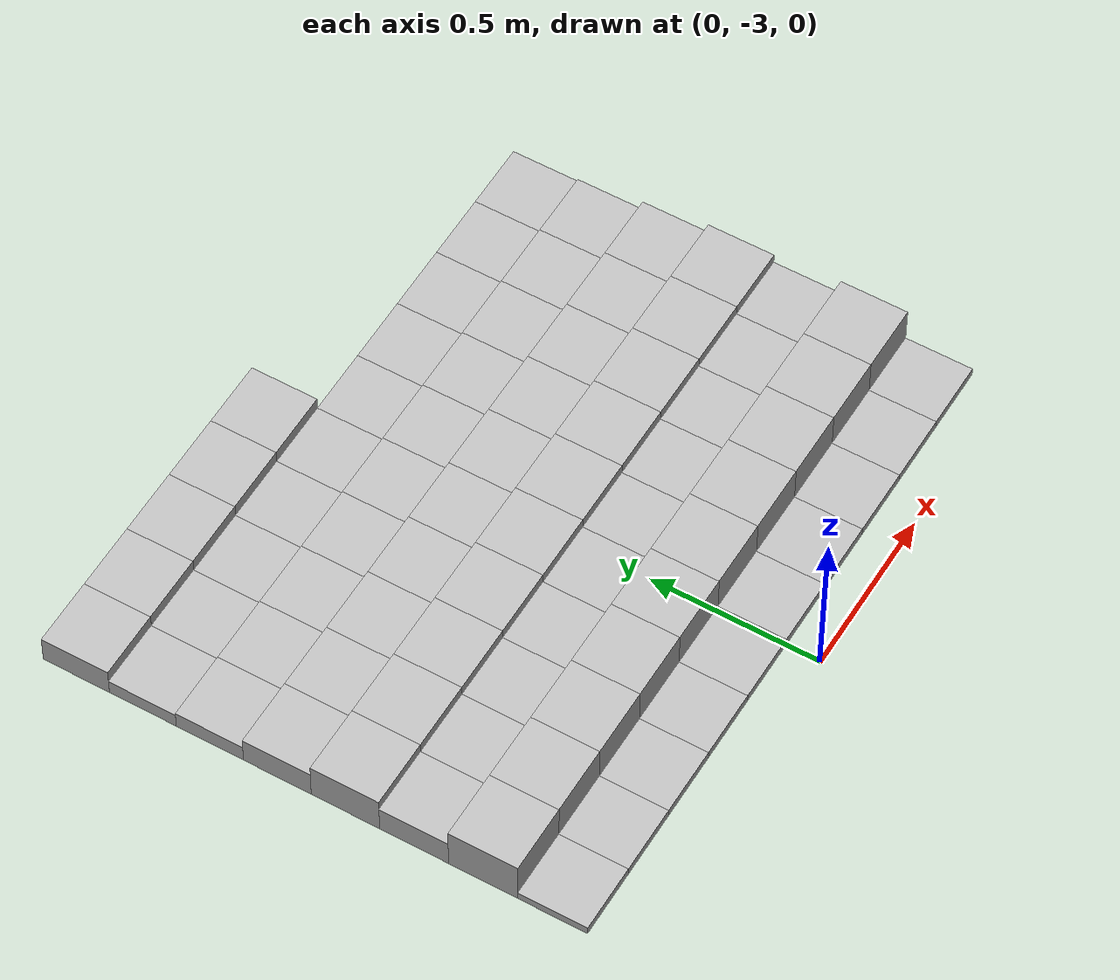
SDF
<sdf version="1.6">
 <model name="Terrain">
  <static>true</static>
  <link name="box_7_0">
   <pose>-0.9 -1.4 0.0438763169991 0 0 0</pose>
   <inertial>
    <mass>1.0</mass>
    <inertia><ixx>0.0</ixx><ixy>0.0</ixy><ixz>0.0</ixz><iyy>0.0</iyy><iyz>0.0</iyz><izz>0.0</izz></inertia>
   </inertial>
   <collision name="collision"><geometry><box><size>0.2 0.2 0.0877526339982</size></box></geometry></collision>
   <visual name="visual"><geometry><box><size>0.2 0.2 0.0877526339982</size></box></geometry></visual>
  </link>
  <link name="box_7_1">
   <pose>-0.7 -1.4 0.0438763169991 0 0 0</pose>
   <inertial>
    <mass>1.0</mass>
    <inertia><ixx>0.0</ixx><ixy>0.0</ixy><ixz>0.0</ixz><iyy>0.0</iyy><iyz>0.0</iyz><izz>0.0</izz></inertia>
   </inertial>
   <collision name="collision"><geometry><box><size>0.2 0.2 0.0877526339982</size></box></geometry></collision>
   <visual name="visual"><geometry><box><size>0.2 0.2 0.0877526339982</size></box></geometry></visual>
  </link>
  <link name="box_7_2">
   <pose>-0.5 -1.4 0.0438763169991 0 0 0</pose>
   <inertial>
    <mass>1.0</mass>
    <inertia><ixx>0.0</ixx><ixy>0.0</ixy><ixz>0.0</ixz><iyy>0.0</iyy><iyz>0.0</iyz><izz>0.0</izz></inertia>
   </inertial>
   <collision name="collision"><geometry><box><size>0.2 0.2 0.0877526339982</size></box></geometry></collision>
   <visual name="visual"><geometry><box><size>0.2 0.2 0.0877526339982</size></box></geometry></visual>
  </link>
  <link name="box_7_3">
   <pose>-0.3 -1.4 0.0438763169991 0 0 0</pose>
   <inertial>
    <mass>1.0</mass>
    <inertia><ixx>0.0</ixx><ixy>0.0</ixy><ixz>0.0</ixz><iyy>0.0</iyy><iyz>0.0</iyz><izz>0.0</izz></inertia>
   </inertial>
   <collision name="collision"><geometry><box><size>0.2 0.2 0.0877526339982</size></box></geometry></collision>
   <visual name="visual"><geometry><box><size>0.2 0.2 0.0877526339982</size></box></geometry></visual>
  </link>
  <link name="box_7_4">
   <pose>-0.1 -1.4 0.0438763169991 0 0 0</pose>
   <inertial>
    <mass>1.0</mass>
    <inertia><ixx>0.0</ixx><ixy>0.0</ixy><ixz>0.0</ixz><iyy>0.0</iyy><iyz>0.0</iyz><izz>0.0</izz></inertia>
   </inertial>
   <collision name="collision"><geometry><box><size>0.2 0.2 0.0877526339982</size></box></geometry></collision>
   <visual name="visual"><geometry><box><size>0.2 0.2 0.0877526339982</size></box></geometry></visual>
  </link>
  <link name="box_8_0">
   <pose>-0.9 -1.6 0.0244572499939 0 0 0</pose>
   <inertial>
    <mass>1.0</mass>
    <inertia><ixx>0.0</ixx><ixy>0.0</ixy><ixz>0.0</ixz><iyy>0.0</iyy><iyz>0.0</iyz><izz>0.0</izz></inertia>
   </inertial>
   <collision name="collision"><geometry><box><size>0.2 0.2 0.0489144999877</size></box></geometry></collision>
   <visual name="visual"><geometry><box><size>0.2 0.2 0.0489144999877</size></box></geometry></visual>
  </link>
  <link name="box_8_1">
   <pose>-0.7 -1.6 0.0244572499939 0 0 0</pose>
   <inertial>
    <mass>1.0</mass>
    <inertia><ixx>0.0</ixx><ixy>0.0</ixy><ixz>0.0</ixz><iyy>0.0</iyy><iyz>0.0</iyz><izz>0.0</izz></inertia>
   </inertial>
   <collision name="collision"><geometry><box><size>0.2 0.2 0.0489144999877</size></box></geometry></collision>
   <visual name="visual"><geometry><box><size>0.2 0.2 0.0489144999877</size></box></geometry></visual>
  </link>
  <link name="box_8_2">
   <pose>-0.5 -1.6 0.0244572499939 0 0 0</pose>
   <inertial>
    <mass>1.0</mass>
    <inertia><ixx>0.0</ixx><ixy>0.0</ixy><ixz>0.0</ixz><iyy>0.0</iyy><iyz>0.0</iyz><izz>0.0</izz></inertia>
   </inertial>
   <collision name="collision"><geometry><box><size>0.2 0.2 0.0489144999877</size></box></geometry></collision>
   <visual name="visual"><geometry><box><size>0.2 0.2 0.0489144999877</size></box></geometry></visual>
  </link>
  <link name="box_8_3">
   <pose>-0.3 -1.6 0.0244572499939 0 0 0</pose>
   <inertial>
    <mass>1.0</mass>
    <inertia><ixx>0.0</ixx><ixy>0.0</ixy><ixz>0.0</ixz><iyy>0.0</iyy><iyz>0.0</iyz><izz>0.0</izz></inertia>
   </inertial>
   <collision name="collision"><geometry><box><size>0.2 0.2 0.0489144999877</size></box></geometry></collision>
   <visual name="visual"><geometry><box><size>0.2 0.2 0.0489144999877</size></box></geometry></visual>
  </link>
  <link name="box_8_4">
   <pose>-0.1 -1.6 0.0244572499939 0 0 0</pose>
   <inertial>
    <mass>1.0</mass>
    <inertia><ixx>0.0</ixx><ixy>0.0</ixy><ixz>0.0</ixz><iyy>0.0</iyy><iyz>0.0</iyz><izz>0.0</izz></inertia>
   </inertial>
   <collision name="collision"><geometry><box><size>0.2 0.2 0.0489144999877</size></box></geometry></collision>
   <visual name="visual"><geometry><box><size>0.2 0.2 0.0489144999877</size></box></geometry></visual>
  </link>
  <link name="box_8_5">
   <pose>0.1 -1.6 0.0244572499939 0 0 0</pose>
   <inertial>
    <mass>1.0</mass>
    <inertia><ixx>0.0</ixx><ixy>0.0</ixy><ixz>0.0</ixz><iyy>0.0</iyy><iyz>0.0</iyz><izz>0.0</izz></inertia>
   </inertial>
   <collision name="collision"><geometry><box><size>0.2 0.2 0.0489144999877</size></box></geometry></collision>
   <visual name="visual"><geometry><box><size>0.2 0.2 0.0489144999877</size></box></geometry></visual>
  </link>
  <link name="box_8_6">
   <pose>0.3 -1.6 0.0244572499939 0 0 0</pose>
   <inertial>
    <mass>1.0</mass>
    <inertia><ixx>0.0</ixx><ixy>0.0</ixy><ixz>0.0</ixz><iyy>0.0</iyy><iyz>0.0</iyz><izz>0.0</izz></inertia>
   </inertial>
   <collision name="collision"><geometry><box><size>0.2 0.2 0.0489144999877</size></box></geometry></collision>
   <visual name="visual"><geometry><box><size>0.2 0.2 0.0489144999877</size></box></geometry></visual>
  </link>
  <link name="box_8_7">
   <pose>0.5 -1.6 0.0244572499939 0 0 0</pose>
   <inertial>
    <mass>1.0</mass>
    <inertia><ixx>0.0</ixx><ixy>0.0</ixy><ixz>0.0</ixz><iyy>0.0</iyy><iyz>0.0</iyz><izz>0.0</izz></inertia>
   </inertial>
   <collision name="collision"><geometry><box><size>0.2 0.2 0.0489144999877</size></box></geometry></collision>
   <visual name="visual"><geometry><box><size>0.2 0.2 0.0489144999877</size></box></geometry></visual>
  </link>
  <link name="box_8_8">
   <pose>0.7 -1.6 0.0244572499939 0 0 0</pose>
   <inertial>
    <mass>1.0</mass>
    <inertia><ixx>0.0</ixx><ixy>0.0</ixy><ixz>0.0</ixz><iyy>0.0</iyy><iyz>0.0</iyz><izz>0.0</izz></inertia>
   </inertial>
   <collision name="collision"><geometry><box><size>0.2 0.2 0.0489144999877</size></box></geometry></collision>
   <visual name="visual"><geometry><box><size>0.2 0.2 0.0489144999877</size></box></geometry></visual>
  </link>
  <link name="box_8_9">
   <pose>0.9 -1.6 0.0244572499939 0 0 0</pose>
   <inertial>
    <mass>1.0</mass>
    <inertia><ixx>0.0</ixx><ixy>0.0</ixy><ixz>0.0</ixz><iyy>0.0</iyy><iyz>0.0</iyz><izz>0.0</izz></inertia>
   </inertial>
   <collision name="collision"><geometry><box><size>0.2 0.2 0.0489144999877</size></box></geometry></collision>
   <visual name="visual"><geometry><box><size>0.2 0.2 0.0489144999877</size></box></geometry></visual>
  </link>
  <link name="box_9_0">
   <pose>-0.9 -1.8 0.0282694233115 0 0 0</pose>
   <inertial>
    <mass>1.0</mass>
    <inertia><ixx>0.0</ixx><ixy>0.0</ixy><ixz>0.0</ixz><iyy>0.0</iyy><iyz>0.0</iyz><izz>0.0</izz></inertia>
   </inertial>
   <collision name="collision"><geometry><box><size>0.2 0.2 0.056538846623</size></box></geometry></collision>
   <visual name="visual"><geometry><box><size>0.2 0.2 0.056538846623</size></box></geometry></visual>
  </link>
  <link name="box_9_1">
   <pose>-0.7 -1.8 0.0282694233115 0 0 0</pose>
   <inertial>
    <mass>1.0</mass>
    <inertia><ixx>0.0</ixx><ixy>0.0</ixy><ixz>0.0</ixz><iyy>0.0</iyy><iyz>0.0</iyz><izz>0.0</izz></inertia>
   </inertial>
   <collision name="collision"><geometry><box><size>0.2 0.2 0.056538846623</size></box></geometry></collision>
   <visual name="visual"><geometry><box><size>0.2 0.2 0.056538846623</size></box></geometry></visual>
  </link>
  <link name="box_9_2">
   <pose>-0.5 -1.8 0.0282694233115 0 0 0</pose>
   <inertial>
    <mass>1.0</mass>
    <inertia><ixx>0.0</ixx><ixy>0.0</ixy><ixz>0.0</ixz><iyy>0.0</iyy><iyz>0.0</iyz><izz>0.0</izz></inertia>
   </inertial>
   <collision name="collision"><geometry><box><size>0.2 0.2 0.056538846623</size></box></geometry></collision>
   <visual name="visual"><geometry><box><size>0.2 0.2 0.056538846623</size></box></geometry></visual>
  </link>
  <link name="box_9_3">
   <pose>-0.3 -1.8 0.0282694233115 0 0 0</pose>
   <inertial>
    <mass>1.0</mass>
    <inertia><ixx>0.0</ixx><ixy>0.0</ixy><ixz>0.0</ixz><iyy>0.0</iyy><iyz>0.0</iyz><izz>0.0</izz></inertia>
   </inertial>
   <collision name="collision"><geometry><box><size>0.2 0.2 0.056538846623</size></box></geometry></collision>
   <visual name="visual"><geometry><box><size>0.2 0.2 0.056538846623</size></box></geometry></visual>
  </link>
  <link name="box_9_4">
   <pose>-0.1 -1.8 0.0282694233115 0 0 0</pose>
   <inertial>
    <mass>1.0</mass>
    <inertia><ixx>0.0</ixx><ixy>0.0</ixy><ixz>0.0</ixz><iyy>0.0</iyy><iyz>0.0</iyz><izz>0.0</izz></inertia>
   </inertial>
   <collision name="collision"><geometry><box><size>0.2 0.2 0.056538846623</size></box></geometry></collision>
   <visual name="visual"><geometry><box><size>0.2 0.2 0.056538846623</size></box></geometry></visual>
  </link>
  <link name="box_9_5">
   <pose>0.1 -1.8 0.0282694233115 0 0 0</pose>
   <inertial>
    <mass>1.0</mass>
    <inertia><ixx>0.0</ixx><ixy>0.0</ixy><ixz>0.0</ixz><iyy>0.0</iyy><iyz>0.0</iyz><izz>0.0</izz></inertia>
   </inertial>
   <collision name="collision"><geometry><box><size>0.2 0.2 0.056538846623</size></box></geometry></collision>
   <visual name="visual"><geometry><box><size>0.2 0.2 0.056538846623</size></box></geometry></visual>
  </link>
  <link name="box_9_6">
   <pose>0.3 -1.8 0.0282694233115 0 0 0</pose>
   <inertial>
    <mass>1.0</mass>
    <inertia><ixx>0.0</ixx><ixy>0.0</ixy><ixz>0.0</ixz><iyy>0.0</iyy><iyz>0.0</iyz><izz>0.0</izz></inertia>
   </inertial>
   <collision name="collision"><geometry><box><size>0.2 0.2 0.056538846623</size></box></geometry></collision>
   <visual name="visual"><geometry><box><size>0.2 0.2 0.056538846623</size></box></geometry></visual>
  </link>
  <link name="box_9_7">
   <pose>0.5 -1.8 0.0282694233115 0 0 0</pose>
   <inertial>
    <mass>1.0</mass>
    <inertia><ixx>0.0</ixx><ixy>0.0</ixy><ixz>0.0</ixz><iyy>0.0</iyy><iyz>0.0</iyz><izz>0.0</izz></inertia>
   </inertial>
   <collision name="collision"><geometry><box><size>0.2 0.2 0.056538846623</size></box></geometry></collision>
   <visual name="visual"><geometry><box><size>0.2 0.2 0.056538846623</size></box></geometry></visual>
  </link>
  <link name="box_9_8">
   <pose>0.7 -1.8 0.0282694233115 0 0 0</pose>
   <inertial>
    <mass>1.0</mass>
    <inertia><ixx>0.0</ixx><ixy>0.0</ixy><ixz>0.0</ixz><iyy>0.0</iyy><iyz>0.0</iyz><izz>0.0</izz></inertia>
   </inertial>
   <collision name="collision"><geometry><box><size>0.2 0.2 0.056538846623</size></box></geometry></collision>
   <visual name="visual"><geometry><box><size>0.2 0.2 0.056538846623</size></box></geometry></visual>
  </link>
  <link name="box_9_9">
   <pose>0.9 -1.8 0.0282694233115 0 0 0</pose>
   <inertial>
    <mass>1.0</mass>
    <inertia><ixx>0.0</ixx><ixy>0.0</ixy><ixz>0.0</ixz><iyy>0.0</iyy><iyz>0.0</iyz><izz>0.0</izz></inertia>
   </inertial>
   <collision name="collision"><geometry><box><size>0.2 0.2 0.056538846623</size></box></geometry></collision>
   <visual name="visual"><geometry><box><size>0.2 0.2 0.056538846623</size></box></geometry></visual>
  </link>
  <link name="box_10_0">
   <pose>-0.9 -2.0 0.04396779351 0 0 0</pose>
   <inertial>
    <mass>1.0</mass>
    <inertia><ixx>0.0</ixx><ixy>0.0</ixy><ixz>0.0</ixz><iyy>0.0</iyy><iyz>0.0</iyz><izz>0.0</izz></inertia>
   </inertial>
   <collision name="collision"><geometry><box><size>0.2 0.2 0.0879355870201</size></box></geometry></collision>
   <visual name="visual"><geometry><box><size>0.2 0.2 0.0879355870201</size></box></geometry></visual>
  </link>
  <link name="box_10_1">
   <pose>-0.7 -2.0 0.04396779351 0 0 0</pose>
   <inertial>
    <mass>1.0</mass>
    <inertia><ixx>0.0</ixx><ixy>0.0</ixy><ixz>0.0</ixz><iyy>0.0</iyy><iyz>0.0</iyz><izz>0.0</izz></inertia>
   </inertial>
   <collision name="collision"><geometry><box><size>0.2 0.2 0.0879355870201</size></box></geometry></collision>
   <visual name="visual"><geometry><box><size>0.2 0.2 0.0879355870201</size></box></geometry></visual>
  </link>
  <link name="box_10_2">
   <pose>-0.5 -2.0 0.04396779351 0 0 0</pose>
   <inertial>
    <mass>1.0</mass>
    <inertia><ixx>0.0</ixx><ixy>0.0</ixy><ixz>0.0</ixz><iyy>0.0</iyy><iyz>0.0</iyz><izz>0.0</izz></inertia>
   </inertial>
   <collision name="collision"><geometry><box><size>0.2 0.2 0.0879355870201</size></box></geometry></collision>
   <visual name="visual"><geometry><box><size>0.2 0.2 0.0879355870201</size></box></geometry></visual>
  </link>
  <link name="box_10_3">
   <pose>-0.3 -2.0 0.04396779351 0 0 0</pose>
   <inertial>
    <mass>1.0</mass>
    <inertia><ixx>0.0</ixx><ixy>0.0</ixy><ixz>0.0</ixz><iyy>0.0</iyy><iyz>0.0</iyz><izz>0.0</izz></inertia>
   </inertial>
   <collision name="collision"><geometry><box><size>0.2 0.2 0.0879355870201</size></box></geometry></collision>
   <visual name="visual"><geometry><box><size>0.2 0.2 0.0879355870201</size></box></geometry></visual>
  </link>
  <link name="box_10_4">
   <pose>-0.1 -2.0 0.04396779351 0 0 0</pose>
   <inertial>
    <mass>1.0</mass>
    <inertia><ixx>0.0</ixx><ixy>0.0</ixy><ixz>0.0</ixz><iyy>0.0</iyy><iyz>0.0</iyz><izz>0.0</izz></inertia>
   </inertial>
   <collision name="collision"><geometry><box><size>0.2 0.2 0.0879355870201</size></box></geometry></collision>
   <visual name="visual"><geometry><box><size>0.2 0.2 0.0879355870201</size></box></geometry></visual>
  </link>
  <link name="box_10_5">
   <pose>0.1 -2.0 0.04396779351 0 0 0</pose>
   <inertial>
    <mass>1.0</mass>
    <inertia><ixx>0.0</ixx><ixy>0.0</ixy><ixz>0.0</ixz><iyy>0.0</iyy><iyz>0.0</iyz><izz>0.0</izz></inertia>
   </inertial>
   <collision name="collision"><geometry><box><size>0.2 0.2 0.0879355870201</size></box></geometry></collision>
   <visual name="visual"><geometry><box><size>0.2 0.2 0.0879355870201</size></box></geometry></visual>
  </link>
  <link name="box_10_6">
   <pose>0.3 -2.0 0.04396779351 0 0 0</pose>
   <inertial>
    <mass>1.0</mass>
    <inertia><ixx>0.0</ixx><ixy>0.0</ixy><ixz>0.0</ixz><iyy>0.0</iyy><iyz>0.0</iyz><izz>0.0</izz></inertia>
   </inertial>
   <collision name="collision"><geometry><box><size>0.2 0.2 0.0879355870201</size></box></geometry></collision>
   <visual name="visual"><geometry><box><size>0.2 0.2 0.0879355870201</size></box></geometry></visual>
  </link>
  <link name="box_10_7">
   <pose>0.5 -2.0 0.04396779351 0 0 0</pose>
   <inertial>
    <mass>1.0</mass>
    <inertia><ixx>0.0</ixx><ixy>0.0</ixy><ixz>0.0</ixz><iyy>0.0</iyy><iyz>0.0</iyz><izz>0.0</izz></inertia>
   </inertial>
   <collision name="collision"><geometry><box><size>0.2 0.2 0.0879355870201</size></box></geometry></collision>
   <visual name="visual"><geometry><box><size>0.2 0.2 0.0879355870201</size></box></geometry></visual>
  </link>
  <link name="box_10_8">
   <pose>0.7 -2.0 0.04396779351 0 0 0</pose>
   <inertial>
    <mass>1.0</mass>
    <inertia><ixx>0.0</ixx><ixy>0.0</ixy><ixz>0.0</ixz><iyy>0.0</iyy><iyz>0.0</iyz><izz>0.0</izz></inertia>
   </inertial>
   <collision name="collision"><geometry><box><size>0.2 0.2 0.0879355870201</size></box></geometry></collision>
   <visual name="visual"><geometry><box><size>0.2 0.2 0.0879355870201</size></box></geometry></visual>
  </link>
  <link name="box_10_9">
   <pose>0.9 -2.0 0.04396779351 0 0 0</pose>
   <inertial>
    <mass>1.0</mass>
    <inertia><ixx>0.0</ixx><ixy>0.0</ixy><ixz>0.0</ixz><iyy>0.0</iyy><iyz>0.0</iyz><izz>0.0</izz></inertia>
   </inertial>
   <collision name="collision"><geometry><box><size>0.2 0.2 0.0879355870201</size></box></geometry></collision>
   <visual name="visual"><geometry><box><size>0.2 0.2 0.0879355870201</size></box></geometry></visual>
  </link>
  <link name="box_11_0">
   <pose>-0.9 -2.2 0.0592932866616 0 0 0</pose>
   <inertial>
    <mass>1.0</mass>
    <inertia><ixx>0.0</ixx><ixy>0.0</ixy><ixz>0.0</ixz><iyy>0.0</iyy><iyz>0.0</iyz><izz>0.0</izz></inertia>
   </inertial>
   <collision name="collision"><geometry><box><size>0.2 0.2 0.118586573323</size></box></geometry></collision>
   <visual name="visual"><geometry><box><size>0.2 0.2 0.118586573323</size></box></geometry></visual>
  </link>
  <link name="box_11_1">
   <pose>-0.7 -2.2 0.0592932866616 0 0 0</pose>
   <inertial>
    <mass>1.0</mass>
    <inertia><ixx>0.0</ixx><ixy>0.0</ixy><ixz>0.0</ixz><iyy>0.0</iyy><iyz>0.0</iyz><izz>0.0</izz></inertia>
   </inertial>
   <collision name="collision"><geometry><box><size>0.2 0.2 0.118586573323</size></box></geometry></collision>
   <visual name="visual"><geometry><box><size>0.2 0.2 0.118586573323</size></box></geometry></visual>
  </link>
  <link name="box_11_2">
   <pose>-0.5 -2.2 0.0592932866616 0 0 0</pose>
   <inertial>
    <mass>1.0</mass>
    <inertia><ixx>0.0</ixx><ixy>0.0</ixy><ixz>0.0</ixz><iyy>0.0</iyy><iyz>0.0</iyz><izz>0.0</izz></inertia>
   </inertial>
   <collision name="collision"><geometry><box><size>0.2 0.2 0.118586573323</size></box></geometry></collision>
   <visual name="visual"><geometry><box><size>0.2 0.2 0.118586573323</size></box></geometry></visual>
  </link>
  <link name="box_11_3">
   <pose>-0.3 -2.2 0.0592932866616 0 0 0</pose>
   <inertial>
    <mass>1.0</mass>
    <inertia><ixx>0.0</ixx><ixy>0.0</ixy><ixz>0.0</ixz><iyy>0.0</iyy><iyz>0.0</iyz><izz>0.0</izz></inertia>
   </inertial>
   <collision name="collision"><geometry><box><size>0.2 0.2 0.118586573323</size></box></geometry></collision>
   <visual name="visual"><geometry><box><size>0.2 0.2 0.118586573323</size></box></geometry></visual>
  </link>
  <link name="box_11_4">
   <pose>-0.1 -2.2 0.0592932866616 0 0 0</pose>
   <inertial>
    <mass>1.0</mass>
    <inertia><ixx>0.0</ixx><ixy>0.0</ixy><ixz>0.0</ixz><iyy>0.0</iyy><iyz>0.0</iyz><izz>0.0</izz></inertia>
   </inertial>
   <collision name="collision"><geometry><box><size>0.2 0.2 0.118586573323</size></box></geometry></collision>
   <visual name="visual"><geometry><box><size>0.2 0.2 0.118586573323</size></box></geometry></visual>
  </link>
  <link name="box_11_5">
   <pose>0.1 -2.2 0.0592932866616 0 0 0</pose>
   <inertial>
    <mass>1.0</mass>
    <inertia><ixx>0.0</ixx><ixy>0.0</ixy><ixz>0.0</ixz><iyy>0.0</iyy><iyz>0.0</iyz><izz>0.0</izz></inertia>
   </inertial>
   <collision name="collision"><geometry><box><size>0.2 0.2 0.118586573323</size></box></geometry></collision>
   <visual name="visual"><geometry><box><size>0.2 0.2 0.118586573323</size></box></geometry></visual>
  </link>
  <link name="box_11_6">
   <pose>0.3 -2.2 0.0592932866616 0 0 0</pose>
   <inertial>
    <mass>1.0</mass>
    <inertia><ixx>0.0</ixx><ixy>0.0</ixy><ixz>0.0</ixz><iyy>0.0</iyy><iyz>0.0</iyz><izz>0.0</izz></inertia>
   </inertial>
   <collision name="collision"><geometry><box><size>0.2 0.2 0.118586573323</size></box></geometry></collision>
   <visual name="visual"><geometry><box><size>0.2 0.2 0.118586573323</size></box></geometry></visual>
  </link>
  <link name="box_11_7">
   <pose>0.5 -2.2 0.0592932866616 0 0 0</pose>
   <inertial>
    <mass>1.0</mass>
    <inertia><ixx>0.0</ixx><ixy>0.0</ixy><ixz>0.0</ixz><iyy>0.0</iyy><iyz>0.0</iyz><izz>0.0</izz></inertia>
   </inertial>
   <collision name="collision"><geometry><box><size>0.2 0.2 0.118586573323</size></box></geometry></collision>
   <visual name="visual"><geometry><box><size>0.2 0.2 0.118586573323</size></box></geometry></visual>
  </link>
  <link name="box_11_8">
   <pose>0.7 -2.2 0.0592932866616 0 0 0</pose>
   <inertial>
    <mass>1.0</mass>
    <inertia><ixx>0.0</ixx><ixy>0.0</ixy><ixz>0.0</ixz><iyy>0.0</iyy><iyz>0.0</iyz><izz>0.0</izz></inertia>
   </inertial>
   <collision name="collision"><geometry><box><size>0.2 0.2 0.118586573323</size></box></geometry></collision>
   <visual name="visual"><geometry><box><size>0.2 0.2 0.118586573323</size></box></geometry></visual>
  </link>
  <link name="box_11_9">
   <pose>0.9 -2.2 0.0592932866616 0 0 0</pose>
   <inertial>
    <mass>1.0</mass>
    <inertia><ixx>0.0</ixx><ixy>0.0</ixy><ixz>0.0</ixz><iyy>0.0</iyy><iyz>0.0</iyz><izz>0.0</izz></inertia>
   </inertial>
   <collision name="collision"><geometry><box><size>0.2 0.2 0.118586573323</size></box></geometry></collision>
   <visual name="visual"><geometry><box><size>0.2 0.2 0.118586573323</size></box></geometry></visual>
  </link>
  <link name="box_12_0">
   <pose>-0.9 -2.4 0.0441052798531 0 0 0</pose>
   <inertial>
    <mass>1.0</mass>
    <inertia><ixx>0.0</ixx><ixy>0.0</ixy><ixz>0.0</ixz><iyy>0.0</iyy><iyz>0.0</iyz><izz>0.0</izz></inertia>
   </inertial>
   <collision name="collision"><geometry><box><size>0.2 0.2 0.0882105597062</size></box></geometry></collision>
   <visual name="visual"><geometry><box><size>0.2 0.2 0.0882105597062</size></box></geometry></visual>
  </link>
  <link name="box_12_1">
   <pose>-0.7 -2.4 0.0441052798531 0 0 0</pose>
   <inertial>
    <mass>1.0</mass>
    <inertia><ixx>0.0</ixx><ixy>0.0</ixy><ixz>0.0</ixz><iyy>0.0</iyy><iyz>0.0</iyz><izz>0.0</izz></inertia>
   </inertial>
   <collision name="collision"><geometry><box><size>0.2 0.2 0.0882105597062</size></box></geometry></collision>
   <visual name="visual"><geometry><box><size>0.2 0.2 0.0882105597062</size></box></geometry></visual>
  </link>
  <link name="box_12_2">
   <pose>-0.5 -2.4 0.0441052798531 0 0 0</pose>
   <inertial>
    <mass>1.0</mass>
    <inertia><ixx>0.0</ixx><ixy>0.0</ixy><ixz>0.0</ixz><iyy>0.0</iyy><iyz>0.0</iyz><izz>0.0</izz></inertia>
   </inertial>
   <collision name="collision"><geometry><box><size>0.2 0.2 0.0882105597062</size></box></geometry></collision>
   <visual name="visual"><geometry><box><size>0.2 0.2 0.0882105597062</size></box></geometry></visual>
  </link>
  <link name="box_12_3">
   <pose>-0.3 -2.4 0.0441052798531 0 0 0</pose>
   <inertial>
    <mass>1.0</mass>
    <inertia><ixx>0.0</ixx><ixy>0.0</ixy><ixz>0.0</ixz><iyy>0.0</iyy><iyz>0.0</iyz><izz>0.0</izz></inertia>
   </inertial>
   <collision name="collision"><geometry><box><size>0.2 0.2 0.0882105597062</size></box></geometry></collision>
   <visual name="visual"><geometry><box><size>0.2 0.2 0.0882105597062</size></box></geometry></visual>
  </link>
  <link name="box_12_4">
   <pose>-0.1 -2.4 0.0441052798531 0 0 0</pose>
   <inertial>
    <mass>1.0</mass>
    <inertia><ixx>0.0</ixx><ixy>0.0</ixy><ixz>0.0</ixz><iyy>0.0</iyy><iyz>0.0</iyz><izz>0.0</izz></inertia>
   </inertial>
   <collision name="collision"><geometry><box><size>0.2 0.2 0.0882105597062</size></box></geometry></collision>
   <visual name="visual"><geometry><box><size>0.2 0.2 0.0882105597062</size></box></geometry></visual>
  </link>
  <link name="box_12_5">
   <pose>0.1 -2.4 0.0441052798531 0 0 0</pose>
   <inertial>
    <mass>1.0</mass>
    <inertia><ixx>0.0</ixx><ixy>0.0</ixy><ixz>0.0</ixz><iyy>0.0</iyy><iyz>0.0</iyz><izz>0.0</izz></inertia>
   </inertial>
   <collision name="collision"><geometry><box><size>0.2 0.2 0.0882105597062</size></box></geometry></collision>
   <visual name="visual"><geometry><box><size>0.2 0.2 0.0882105597062</size></box></geometry></visual>
  </link>
  <link name="box_12_6">
   <pose>0.3 -2.4 0.0441052798531 0 0 0</pose>
   <inertial>
    <mass>1.0</mass>
    <inertia><ixx>0.0</ixx><ixy>0.0</ixy><ixz>0.0</ixz><iyy>0.0</iyy><iyz>0.0</iyz><izz>0.0</izz></inertia>
   </inertial>
   <collision name="collision"><geometry><box><size>0.2 0.2 0.0882105597062</size></box></geometry></collision>
   <visual name="visual"><geometry><box><size>0.2 0.2 0.0882105597062</size></box></geometry></visual>
  </link>
  <link name="box_12_7">
   <pose>0.5 -2.4 0.0441052798531 0 0 0</pose>
   <inertial>
    <mass>1.0</mass>
    <inertia><ixx>0.0</ixx><ixy>0.0</ixy><ixz>0.0</ixz><iyy>0.0</iyy><iyz>0.0</iyz><izz>0.0</izz></inertia>
   </inertial>
   <collision name="collision"><geometry><box><size>0.2 0.2 0.0882105597062</size></box></geometry></collision>
   <visual name="visual"><geometry><box><size>0.2 0.2 0.0882105597062</size></box></geometry></visual>
  </link>
  <link name="box_12_8">
   <pose>0.7 -2.4 0.0441052798531 0 0 0</pose>
   <inertial>
    <mass>1.0</mass>
    <inertia><ixx>0.0</ixx><ixy>0.0</ixy><ixz>0.0</ixz><iyy>0.0</iyy><iyz>0.0</iyz><izz>0.0</izz></inertia>
   </inertial>
   <collision name="collision"><geometry><box><size>0.2 0.2 0.0882105597062</size></box></geometry></collision>
   <visual name="visual"><geometry><box><size>0.2 0.2 0.0882105597062</size></box></geometry></visual>
  </link>
  <link name="box_12_9">
   <pose>0.9 -2.4 0.0441052798531 0 0 0</pose>
   <inertial>
    <mass>1.0</mass>
    <inertia><ixx>0.0</ixx><ixy>0.0</ixy><ixz>0.0</ixz><iyy>0.0</iyy><iyz>0.0</iyz><izz>0.0</izz></inertia>
   </inertial>
   <collision name="collision"><geometry><box><size>0.2 0.2 0.0882105597062</size></box></geometry></collision>
   <visual name="visual"><geometry><box><size>0.2 0.2 0.0882105597062</size></box></geometry></visual>
  </link>
  <link name="box_13_0">
   <pose>-0.9 -2.6 0.0685524577401 0 0 0</pose>
   <inertial>
    <mass>1.0</mass>
    <inertia><ixx>0.0</ixx><ixy>0.0</ixy><ixz>0.0</ixz><iyy>0.0</iyy><iyz>0.0</iyz><izz>0.0</izz></inertia>
   </inertial>
   <collision name="collision"><geometry><box><size>0.2 0.2 0.13710491548</size></box></geometry></collision>
   <visual name="visual"><geometry><box><size>0.2 0.2 0.13710491548</size></box></geometry></visual>
  </link>
  <link name="box_13_1">
   <pose>-0.7 -2.6 0.0685524577401 0 0 0</pose>
   <inertial>
    <mass>1.0</mass>
    <inertia><ixx>0.0</ixx><ixy>0.0</ixy><ixz>0.0</ixz><iyy>0.0</iyy><iyz>0.0</iyz><izz>0.0</izz></inertia>
   </inertial>
   <collision name="collision"><geometry><box><size>0.2 0.2 0.13710491548</size></box></geometry></collision>
   <visual name="visual"><geometry><box><size>0.2 0.2 0.13710491548</size></box></geometry></visual>
  </link>
  <link name="box_13_2">
   <pose>-0.5 -2.6 0.0685524577401 0 0 0</pose>
   <inertial>
    <mass>1.0</mass>
    <inertia><ixx>0.0</ixx><ixy>0.0</ixy><ixz>0.0</ixz><iyy>0.0</iyy><iyz>0.0</iyz><izz>0.0</izz></inertia>
   </inertial>
   <collision name="collision"><geometry><box><size>0.2 0.2 0.13710491548</size></box></geometry></collision>
   <visual name="visual"><geometry><box><size>0.2 0.2 0.13710491548</size></box></geometry></visual>
  </link>
  <link name="box_13_3">
   <pose>-0.3 -2.6 0.0685524577401 0 0 0</pose>
   <inertial>
    <mass>1.0</mass>
    <inertia><ixx>0.0</ixx><ixy>0.0</ixy><ixz>0.0</ixz><iyy>0.0</iyy><iyz>0.0</iyz><izz>0.0</izz></inertia>
   </inertial>
   <collision name="collision"><geometry><box><size>0.2 0.2 0.13710491548</size></box></geometry></collision>
   <visual name="visual"><geometry><box><size>0.2 0.2 0.13710491548</size></box></geometry></visual>
  </link>
  <link name="box_13_4">
   <pose>-0.1 -2.6 0.0685524577401 0 0 0</pose>
   <inertial>
    <mass>1.0</mass>
    <inertia><ixx>0.0</ixx><ixy>0.0</ixy><ixz>0.0</ixz><iyy>0.0</iyy><iyz>0.0</iyz><izz>0.0</izz></inertia>
   </inertial>
   <collision name="collision"><geometry><box><size>0.2 0.2 0.13710491548</size></box></geometry></collision>
   <visual name="visual"><geometry><box><size>0.2 0.2 0.13710491548</size></box></geometry></visual>
  </link>
  <link name="box_13_5">
   <pose>0.1 -2.6 0.0685524577401 0 0 0</pose>
   <inertial>
    <mass>1.0</mass>
    <inertia><ixx>0.0</ixx><ixy>0.0</ixy><ixz>0.0</ixz><iyy>0.0</iyy><iyz>0.0</iyz><izz>0.0</izz></inertia>
   </inertial>
   <collision name="collision"><geometry><box><size>0.2 0.2 0.13710491548</size></box></geometry></collision>
   <visual name="visual"><geometry><box><size>0.2 0.2 0.13710491548</size></box></geometry></visual>
  </link>
  <link name="box_13_6">
   <pose>0.3 -2.6 0.0685524577401 0 0 0</pose>
   <inertial>
    <mass>1.0</mass>
    <inertia><ixx>0.0</ixx><ixy>0.0</ixy><ixz>0.0</ixz><iyy>0.0</iyy><iyz>0.0</iyz><izz>0.0</izz></inertia>
   </inertial>
   <collision name="collision"><geometry><box><size>0.2 0.2 0.13710491548</size></box></geometry></collision>
   <visual name="visual"><geometry><box><size>0.2 0.2 0.13710491548</size></box></geometry></visual>
  </link>
  <link name="box_13_7">
   <pose>0.5 -2.6 0.0685524577401 0 0 0</pose>
   <inertial>
    <mass>1.0</mass>
    <inertia><ixx>0.0</ixx><ixy>0.0</ixy><ixz>0.0</ixz><iyy>0.0</iyy><iyz>0.0</iyz><izz>0.0</izz></inertia>
   </inertial>
   <collision name="collision"><geometry><box><size>0.2 0.2 0.13710491548</size></box></geometry></collision>
   <visual name="visual"><geometry><box><size>0.2 0.2 0.13710491548</size></box></geometry></visual>
  </link>
  <link name="box_13_8">
   <pose>0.7 -2.6 0.0685524577401 0 0 0</pose>
   <inertial>
    <mass>1.0</mass>
    <inertia><ixx>0.0</ixx><ixy>0.0</ixy><ixz>0.0</ixz><iyy>0.0</iyy><iyz>0.0</iyz><izz>0.0</izz></inertia>
   </inertial>
   <collision name="collision"><geometry><box><size>0.2 0.2 0.13710491548</size></box></geometry></collision>
   <visual name="visual"><geometry><box><size>0.2 0.2 0.13710491548</size></box></geometry></visual>
  </link>
  <link name="box_13_9">
   <pose>0.9 -2.6 0.0685524577401 0 0 0</pose>
   <inertial>
    <mass>1.0</mass>
    <inertia><ixx>0.0</ixx><ixy>0.0</ixy><ixz>0.0</ixz><iyy>0.0</iyy><iyz>0.0</iyz><izz>0.0</izz></inertia>
   </inertial>
   <collision name="collision"><geometry><box><size>0.2 0.2 0.13710491548</size></box></geometry></collision>
   <visual name="visual"><geometry><box><size>0.2 0.2 0.13710491548</size></box></geometry></visual>
  </link>
  <link name="box_14_0">
   <pose>-0.9 -2.8 0.0129224478308 0 0 0</pose>
   <inertial>
    <mass>1.0</mass>
    <inertia><ixx>0.0</ixx><ixy>0.0</ixy><ixz>0.0</ixz><iyy>0.0</iyy><iyz>0.0</iyz><izz>0.0</izz></inertia>
   </inertial>
   <collision name="collision"><geometry><box><size>0.2 0.2 0.0258448956615</size></box></geometry></collision>
   <visual name="visual"><geometry><box><size>0.2 0.2 0.0258448956615</size></box></geometry></visual>
  </link>
  <link name="box_14_1">
   <pose>-0.7 -2.8 0.0129224478308 0 0 0</pose>
   <inertial>
    <mass>1.0</mass>
    <inertia><ixx>0.0</ixx><ixy>0.0</ixy><ixz>0.0</ixz><iyy>0.0</iyy><iyz>0.0</iyz><izz>0.0</izz></inertia>
   </inertial>
   <collision name="collision"><geometry><box><size>0.2 0.2 0.0258448956615</size></box></geometry></collision>
   <visual name="visual"><geometry><box><size>0.2 0.2 0.0258448956615</size></box></geometry></visual>
  </link>
  <link name="box_14_2">
   <pose>-0.5 -2.8 0.0129224478308 0 0 0</pose>
   <inertial>
    <mass>1.0</mass>
    <inertia><ixx>0.0</ixx><ixy>0.0</ixy><ixz>0.0</ixz><iyy>0.0</iyy><iyz>0.0</iyz><izz>0.0</izz></inertia>
   </inertial>
   <collision name="collision"><geometry><box><size>0.2 0.2 0.0258448956615</size></box></geometry></collision>
   <visual name="visual"><geometry><box><size>0.2 0.2 0.0258448956615</size></box></geometry></visual>
  </link>
  <link name="box_14_3">
   <pose>-0.3 -2.8 0.0129224478308 0 0 0</pose>
   <inertial>
    <mass>1.0</mass>
    <inertia><ixx>0.0</ixx><ixy>0.0</ixy><ixz>0.0</ixz><iyy>0.0</iyy><iyz>0.0</iyz><izz>0.0</izz></inertia>
   </inertial>
   <collision name="collision"><geometry><box><size>0.2 0.2 0.0258448956615</size></box></geometry></collision>
   <visual name="visual"><geometry><box><size>0.2 0.2 0.0258448956615</size></box></geometry></visual>
  </link>
  <link name="box_14_4">
   <pose>-0.1 -2.8 0.0129224478308 0 0 0</pose>
   <inertial>
    <mass>1.0</mass>
    <inertia><ixx>0.0</ixx><ixy>0.0</ixy><ixz>0.0</ixz><iyy>0.0</iyy><iyz>0.0</iyz><izz>0.0</izz></inertia>
   </inertial>
   <collision name="collision"><geometry><box><size>0.2 0.2 0.0258448956615</size></box></geometry></collision>
   <visual name="visual"><geometry><box><size>0.2 0.2 0.0258448956615</size></box></geometry></visual>
  </link>
  <link name="box_14_5">
   <pose>0.1 -2.8 0.0129224478308 0 0 0</pose>
   <inertial>
    <mass>1.0</mass>
    <inertia><ixx>0.0</ixx><ixy>0.0</ixy><ixz>0.0</ixz><iyy>0.0</iyy><iyz>0.0</iyz><izz>0.0</izz></inertia>
   </inertial>
   <collision name="collision"><geometry><box><size>0.2 0.2 0.0258448956615</size></box></geometry></collision>
   <visual name="visual"><geometry><box><size>0.2 0.2 0.0258448956615</size></box></geometry></visual>
  </link>
  <link name="box_14_6">
   <pose>0.3 -2.8 0.0129224478308 0 0 0</pose>
   <inertial>
    <mass>1.0</mass>
    <inertia><ixx>0.0</ixx><ixy>0.0</ixy><ixz>0.0</ixz><iyy>0.0</iyy><iyz>0.0</iyz><izz>0.0</izz></inertia>
   </inertial>
   <collision name="collision"><geometry><box><size>0.2 0.2 0.0258448956615</size></box></geometry></collision>
   <visual name="visual"><geometry><box><size>0.2 0.2 0.0258448956615</size></box></geometry></visual>
  </link>
  <link name="box_14_7">
   <pose>0.5 -2.8 0.0129224478308 0 0 0</pose>
   <inertial>
    <mass>1.0</mass>
    <inertia><ixx>0.0</ixx><ixy>0.0</ixy><ixz>0.0</ixz><iyy>0.0</iyy><iyz>0.0</iyz><izz>0.0</izz></inertia>
   </inertial>
   <collision name="collision"><geometry><box><size>0.2 0.2 0.0258448956615</size></box></geometry></collision>
   <visual name="visual"><geometry><box><size>0.2 0.2 0.0258448956615</size></box></geometry></visual>
  </link>
  <link name="box_14_8">
   <pose>0.7 -2.8 0.0129224478308 0 0 0</pose>
   <inertial>
    <mass>1.0</mass>
    <inertia><ixx>0.0</ixx><ixy>0.0</ixy><ixz>0.0</ixz><iyy>0.0</iyy><iyz>0.0</iyz><izz>0.0</izz></inertia>
   </inertial>
   <collision name="collision"><geometry><box><size>0.2 0.2 0.0258448956615</size></box></geometry></collision>
   <visual name="visual"><geometry><box><size>0.2 0.2 0.0258448956615</size></box></geometry></visual>
  </link>
  <link name="box_14_9">
   <pose>0.9 -2.8 0.0129224478308 0 0 0</pose>
   <inertial>
    <mass>1.0</mass>
    <inertia><ixx>0.0</ixx><ixy>0.0</ixy><ixz>0.0</ixz><iyy>0.0</iyy><iyz>0.0</iyz><izz>0.0</izz></inertia>
   </inertial>
   <collision name="collision"><geometry><box><size>0.2 0.2 0.0258448956615</size></box></geometry></collision>
   <visual name="visual"><geometry><box><size>0.2 0.2 0.0258448956615</size></box></geometry></visual>
  </link>
 </model>
</sdf>
